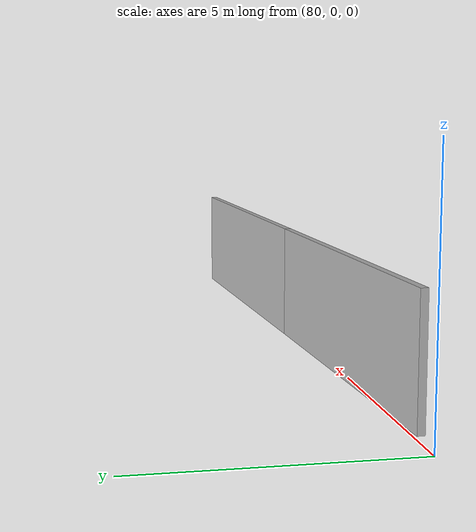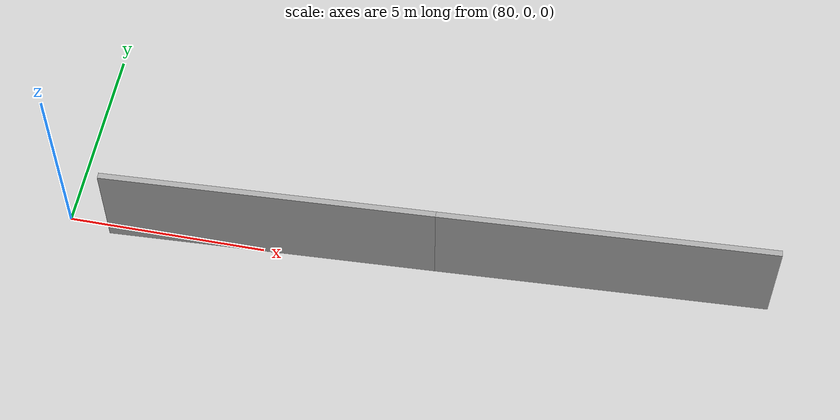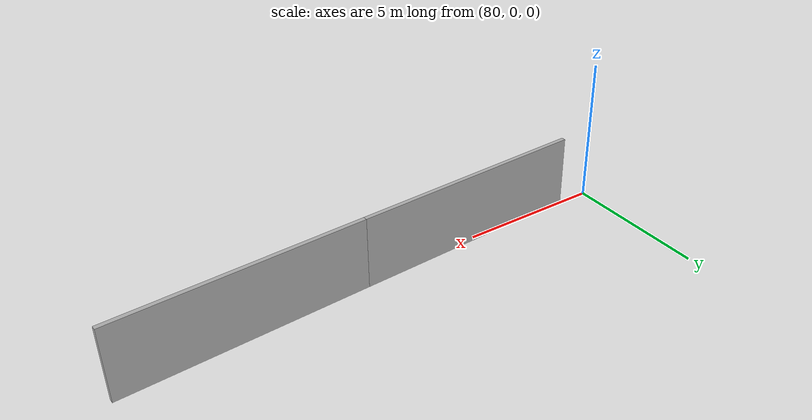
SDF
<?xml version="1.0" ?>
<sdf version="1.6">
  <model name="sps_2301">
    <pose frame="">0 0 0 0 -0 0</pose>
    <static>1</static>
    <self_collide>0</self_collide>
    <allow_auto_disable>0</allow_auto_disable>
    <link name="Wall8988">
      <kinematic>0</kinematic>
      <gravity>1</gravity>
      <self_collide>0</self_collide>
      <collision name="collision">
        <geometry>
          <box>
            <size>8.25191 0.15 2.5</size>
          </box>
        </geometry>
        <pose frame="">0 0 0 0 -0 0</pose>
      </collision>
      <visual name="visual">
        <geometry>
          <box>
            <size>8.25191 0.15 2.5</size>
          </box>
        </geometry>
        <pose frame="">0 0 0 0 -0 0</pose>
        <cast_shadows>1</cast_shadows>
        <transparency>0.0</transparency>
      </visual>
      <pose frame="">85.1831 0.0637959 1.25 0 -0 0.0509394</pose>
    </link>
    <link name="Wall8989">
      <kinematic>0</kinematic>
      <gravity>1</gravity>
      <self_collide>0</self_collide>
      <collision name="collision">
        <geometry>
          <box>
            <size>8.25189 0.15 2.5</size>
          </box>
        </geometry>
        <pose frame="">0 0 0 0 -0 0</pose>
      </collision>
      <visual name="visual">
        <geometry>
          <box>
            <size>8.25189 0.15 2.5</size>
          </box>
        </geometry>
        <pose frame="">0 0 0 0 -0 0</pose>
        <cast_shadows>1</cast_shadows>
        <transparency>0.0</transparency>
      </visual>
      <pose frame="">93.4238 0.493697 1.25 0 -0 0.0533023</pose>
    </link>
  </model>
</sdf>
